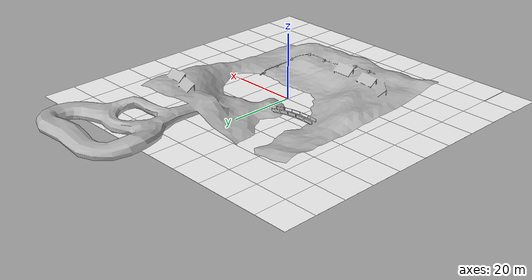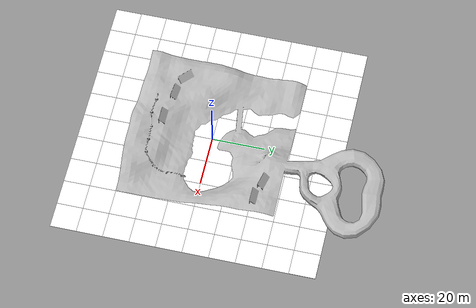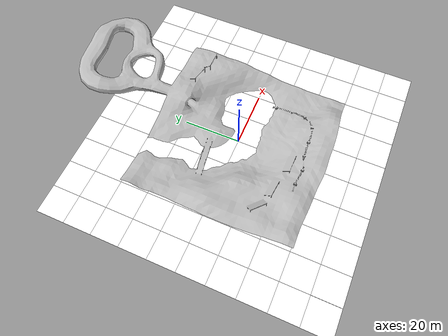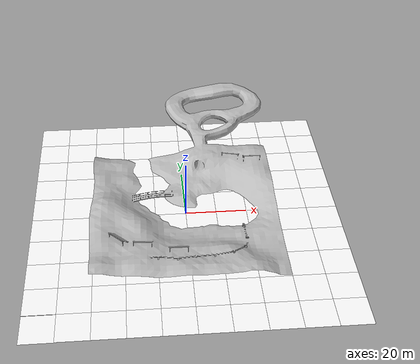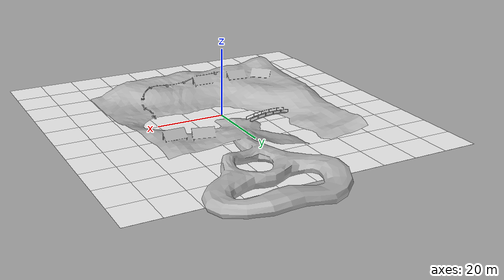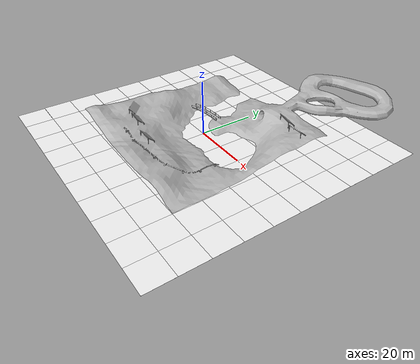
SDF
<?xml version='1.0' encoding='utf-8'?>
<sdf version="1.9">
  <world name="inspection">
    <physics type="ode">
      <max_step_size>0.004</max_step_size>
      <real_time_factor>1.0</real_time_factor>
      <real_time_update_rate>250</real_time_update_rate>
    </physics>
    <gravity>0 0 -9.8</gravity>
    <magnetic_field>6e-06 2.3e-05 -4.2e-05</magnetic_field>
    <atmosphere type="adiabatic" />
    <scene>
      <grid>false</grid>
      <ambient>0.4 0.4 0.4 1</ambient>
      <background>0.7 0.7 0.7 1</background>
      <shadows>true</shadows>
    </scene>
    <include>
      <uri>model://grass_ground</uri>
      <pose>0 0 0 0 0 0</pose>
    </include>
    <light name="sunUTC" type="directional">
      <pose>0 0 500 0 -0 0</pose>
      <cast_shadows>true</cast_shadows>
      <intensity>1</intensity>
      <direction>0.001 0.625 -0.78</direction>
      <diffuse>0.904 0.904 0.904 1</diffuse>
      <specular>0.271 0.271 0.271 1</specular>
      <attenuation>
        <range>2000</range>
        <linear>0</linear>
        <constant>1</constant>
        <quadratic>0</quadratic>
      </attenuation>
      <spot>
        <inner_angle>0</inner_angle>
        <outer_angle>0</outer_angle>
        <falloff>0</falloff>
      </spot>
    </light>
    <spherical_coordinates>
      <surface_model>EARTH_WGS84</surface_model>
      <world_frame_orientation>ENU</world_frame_orientation>
      <latitude_deg>47.397971057728974</latitude_deg>
      <longitude_deg> 8.546163739800146</longitude_deg>
      <elevation>0</elevation>
    </spherical_coordinates>

    <model name="inspection_water_geom">
      <link name="inspection_water_link">
        <pose frame="">0 0 0 0 -0 0</pose>
        <inertial>
          <pose frame="">0 0 0 0 -0 0</pose>
          <mass>1</mass>
          <inertia>
            <ixx>1</ixx>
            <ixy>0</ixy>
            <ixz>0</ixz>
            <iyy>1</iyy>
            <iyz>0</iyz>
            <izz>1</izz>
          </inertia>
        </inertial>
        <visual name="inspection_water_link_visual">
          <pose frame="">0 0 0 0 -0 0</pose>
          <geometry>
            <mesh>
              <scale>1 1 1</scale>
              <uri>model://cpr_inspection/meshes/inspection_water.dae</uri>
            </mesh>
          </geometry>
        </visual>
        <self_collide>0</self_collide>
        <enable_wind>0</enable_wind>
        <kinematic>0</kinematic>
      </link>
      <static>1</static>
      <pose frame="">0 0 0 0 -0 0</pose>
    </model>
    <model name="inspection_geom">
      <link name="inspection_world_link">
        <pose frame="">0 0 0 0 -0 0</pose>
        <inertial>
          <pose frame="">0 0 0 0 -0 0</pose>
          <mass>1</mass>
          <inertia>
            <ixx>1</ixx>
            <ixy>0</ixy>
            <ixz>0</ixz>
            <iyy>1</iyy>
            <iyz>0</iyz>
            <izz>1</izz>
          </inertia>
        </inertial>
        <collision name="inspection_world_link_collision">
          <pose frame="">0 0 0 0 -0 0</pose>
          <geometry>
            <mesh>
              <scale>1 1 1</scale>
              <uri>model://cpr_inspection/meshes/inspection_world.dae</uri>
            </mesh>
          </geometry>
          <max_contacts>10</max_contacts>
          <surface>
            <contact>
              <ode />
            </contact>
            <bounce />
            <friction>
              <torsional>
                <ode />
              </torsional>
              <ode />
            </friction>
          </surface>
        </collision>
        <visual name="inspection_world_link_visual">
          <pose frame="">0 0 0 0 -0 0</pose>
          <geometry>
            <mesh>
              <scale>1 1 1</scale>
              <uri>model://cpr_inspection/meshes/inspection_world.dae</uri>
            </mesh>
          </geometry>
        </visual>
        <self_collide>0</self_collide>
        <enable_wind>0</enable_wind>
        <kinematic>0</kinematic>
      </link>
      <static>1</static>
      <pose frame="">0 0 0 0 -0 0</pose>
    </model>
  </world>
</sdf>

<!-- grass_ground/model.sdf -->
<sdf version="1.9">
  <model name="grass_ground">
    <static>true</static>
    <link name="link">
      <collision name="collision">
        <geometry>
          <plane>
            <normal>0 0 1</normal>
            <size>100 100</size>
          </plane>
        </geometry>
      </collision>
      <!-- Grid of 10x10m tiles -->
      <visual name="tile_0_0"><pose>-45 -45 0 0 0 0</pose><cast_shadows>false</cast_shadows><geometry><plane><normal>0 0 1</normal><size>10 10</size></plane></geometry><material><diffuse>1 1 1 1</diffuse><ambient>1 1 1 1</ambient><pbr><metal><albedo_map>materials/textures/grass_dry.png</albedo_map></metal></pbr></material></visual>
      <visual name="tile_1_0"><pose>-35 -45 0 0 0 0</pose><cast_shadows>false</cast_shadows><geometry><plane><normal>0 0 1</normal><size>10 10</size></plane></geometry><material><diffuse>1 1 1 1</diffuse><ambient>1 1 1 1</ambient><pbr><metal><albedo_map>materials/textures/grass_dry.png</albedo_map></metal></pbr></material></visual>
      <visual name="tile_2_0"><pose>-25 -45 0 0 0 0</pose><cast_shadows>false</cast_shadows><geometry><plane><normal>0 0 1</normal><size>10 10</size></plane></geometry><material><diffuse>1 1 1 1</diffuse><ambient>1 1 1 1</ambient><pbr><metal><albedo_map>materials/textures/grass_dry.png</albedo_map></metal></pbr></material></visual>
      <visual name="tile_3_0"><pose>-15 -45 0 0 0 0</pose><cast_shadows>false</cast_shadows><geometry><plane><normal>0 0 1</normal><size>10 10</size></plane></geometry><material><diffuse>1 1 1 1</diffuse><ambient>1 1 1 1</ambient><pbr><metal><albedo_map>materials/textures/grass_dry.png</albedo_map></metal></pbr></material></visual>
      <visual name="tile_4_0"><pose>-5 -45 0 0 0 0</pose><cast_shadows>false</cast_shadows><geometry><plane><normal>0 0 1</normal><size>10 10</size></plane></geometry><material><diffuse>1 1 1 1</diffuse><ambient>1 1 1 1</ambient><pbr><metal><albedo_map>materials/textures/grass_dry.png</albedo_map></metal></pbr></material></visual>
      <visual name="tile_5_0"><pose>5 -45 0 0 0 0</pose><cast_shadows>false</cast_shadows><geometry><plane><normal>0 0 1</normal><size>10 10</size></plane></geometry><material><diffuse>1 1 1 1</diffuse><ambient>1 1 1 1</ambient><pbr><metal><albedo_map>materials/textures/grass_dry.png</albedo_map></metal></pbr></material></visual>
      <visual name="tile_6_0"><pose>15 -45 0 0 0 0</pose><cast_shadows>false</cast_shadows><geometry><plane><normal>0 0 1</normal><size>10 10</size></plane></geometry><material><diffuse>1 1 1 1</diffuse><ambient>1 1 1 1</ambient><pbr><metal><albedo_map>materials/textures/grass_dry.png</albedo_map></metal></pbr></material></visual>
      <visual name="tile_7_0"><pose>25 -45 0 0 0 0</pose><cast_shadows>false</cast_shadows><geometry><plane><normal>0 0 1</normal><size>10 10</size></plane></geometry><material><diffuse>1 1 1 1</diffuse><ambient>1 1 1 1</ambient><pbr><metal><albedo_map>materials/textures/grass_dry.png</albedo_map></metal></pbr></material></visual>
      <visual name="tile_8_0"><pose>35 -45 0 0 0 0</pose><cast_shadows>false</cast_shadows><geometry><plane><normal>0 0 1</normal><size>10 10</size></plane></geometry><material><diffuse>1 1 1 1</diffuse><ambient>1 1 1 1</ambient><pbr><metal><albedo_map>materials/textures/grass_dry.png</albedo_map></metal></pbr></material></visual>
      <visual name="tile_9_0"><pose>45 -45 0 0 0 0</pose><cast_shadows>false</cast_shadows><geometry><plane><normal>0 0 1</normal><size>10 10</size></plane></geometry><material><diffuse>1 1 1 1</diffuse><ambient>1 1 1 1</ambient><pbr><metal><albedo_map>materials/textures/grass_dry.png</albedo_map></metal></pbr></material></visual>
      <visual name="tile_0_1"><pose>-45 -35 0 0 0 0</pose><cast_shadows>false</cast_shadows><geometry><plane><normal>0 0 1</normal><size>10 10</size></plane></geometry><material><diffuse>1 1 1 1</diffuse><ambient>1 1 1 1</ambient><pbr><metal><albedo_map>materials/textures/grass_dry.png</albedo_map></metal></pbr></material></visual>
      <visual name="tile_1_1"><pose>-35 -35 0 0 0 0</pose><cast_shadows>false</cast_shadows><geometry><plane><normal>0 0 1</normal><size>10 10</size></plane></geometry><material><diffuse>1 1 1 1</diffuse><ambient>1 1 1 1</ambient><pbr><metal><albedo_map>materials/textures/grass_dry.png</albedo_map></metal></pbr></material></visual>
      <visual name="tile_2_1"><pose>-25 -35 0 0 0 0</pose><cast_shadows>false</cast_shadows><geometry><plane><normal>0 0 1</normal><size>10 10</size></plane></geometry><material><diffuse>1 1 1 1</diffuse><ambient>1 1 1 1</ambient><pbr><metal><albedo_map>materials/textures/grass_dry.png</albedo_map></metal></pbr></material></visual>
      <visual name="tile_3_1"><pose>-15 -35 0 0 0 0</pose><cast_shadows>false</cast_shadows><geometry><plane><normal>0 0 1</normal><size>10 10</size></plane></geometry><material><diffuse>1 1 1 1</diffuse><ambient>1 1 1 1</ambient><pbr><metal><albedo_map>materials/textures/grass_dry.png</albedo_map></metal></pbr></material></visual>
      <visual name="tile_4_1"><pose>-5 -35 0 0 0 0</pose><cast_shadows>false</cast_shadows><geometry><plane><normal>0 0 1</normal><size>10 10</size></plane></geometry><material><diffuse>1 1 1 1</diffuse><ambient>1 1 1 1</ambient><pbr><metal><albedo_map>materials/textures/grass_dry.png</albedo_map></metal></pbr></material></visual>
      <visual name="tile_5_1"><pose>5 -35 0 0 0 0</pose><cast_shadows>false</cast_shadows><geometry><plane><normal>0 0 1</normal><size>10 10</size></plane></geometry><material><diffuse>1 1 1 1</diffuse><ambient>1 1 1 1</ambient><pbr><metal><albedo_map>materials/textures/grass_dry.png</albedo_map></metal></pbr></material></visual>
      <visual name="tile_6_1"><pose>15 -35 0 0 0 0</pose><cast_shadows>false</cast_shadows><geometry><plane><normal>0 0 1</normal><size>10 10</size></plane></geometry><material><diffuse>1 1 1 1</diffuse><ambient>1 1 1 1</ambient><pbr><metal><albedo_map>materials/textures/grass_dry.png</albedo_map></metal></pbr></material></visual>
      <visual name="tile_7_1"><pose>25 -35 0 0 0 0</pose><cast_shadows>false</cast_shadows><geometry><plane><normal>0 0 1</normal><size>10 10</size></plane></geometry><material><diffuse>1 1 1 1</diffuse><ambient>1 1 1 1</ambient><pbr><metal><albedo_map>materials/textures/grass_dry.png</albedo_map></metal></pbr></material></visual>
      <visual name="tile_8_1"><pose>35 -35 0 0 0 0</pose><cast_shadows>false</cast_shadows><geometry><plane><normal>0 0 1</normal><size>10 10</size></plane></geometry><material><diffuse>1 1 1 1</diffuse><ambient>1 1 1 1</ambient><pbr><metal><albedo_map>materials/textures/grass_dry.png</albedo_map></metal></pbr></material></visual>
      <visual name="tile_9_1"><pose>45 -35 0 0 0 0</pose><cast_shadows>false</cast_shadows><geometry><plane><normal>0 0 1</normal><size>10 10</size></plane></geometry><material><diffuse>1 1 1 1</diffuse><ambient>1 1 1 1</ambient><pbr><metal><albedo_map>materials/textures/grass_dry.png</albedo_map></metal></pbr></material></visual>
      <visual name="tile_0_2"><pose>-45 -25 0 0 0 0</pose><cast_shadows>false</cast_shadows><geometry><plane><normal>0 0 1</normal><size>10 10</size></plane></geometry><material><diffuse>1 1 1 1</diffuse><ambient>1 1 1 1</ambient><pbr><metal><albedo_map>materials/textures/grass_dry.png</albedo_map></metal></pbr></material></visual>
      <visual name="tile_1_2"><pose>-35 -25 0 0 0 0</pose><cast_shadows>false</cast_shadows><geometry><plane><normal>0 0 1</normal><size>10 10</size></plane></geometry><material><diffuse>1 1 1 1</diffuse><ambient>1 1 1 1</ambient><pbr><metal><albedo_map>materials/textures/grass_dry.png</albedo_map></metal></pbr></material></visual>
      <visual name="tile_2_2"><pose>-25 -25 0 0 0 0</pose><cast_shadows>false</cast_shadows><geometry><plane><normal>0 0 1</normal><size>10 10</size></plane></geometry><material><diffuse>1 1 1 1</diffuse><ambient>1 1 1 1</ambient><pbr><metal><albedo_map>materials/textures/grass_dry.png</albedo_map></metal></pbr></material></visual>
      <visual name="tile_3_2"><pose>-15 -25 0 0 0 0</pose><cast_shadows>false</cast_shadows><geometry><plane><normal>0 0 1</normal><size>10 10</size></plane></geometry><material><diffuse>1 1 1 1</diffuse><ambient>1 1 1 1</ambient><pbr><metal><albedo_map>materials/textures/grass_dry.png</albedo_map></metal></pbr></material></visual>
      <visual name="tile_4_2"><pose>-5 -25 0 0 0 0</pose><cast_shadows>false</cast_shadows><geometry><plane><normal>0 0 1</normal><size>10 10</size></plane></geometry><material><diffuse>1 1 1 1</diffuse><ambient>1 1 1 1</ambient><pbr><metal><albedo_map>materials/textures/grass_dry.png</albedo_map></metal></pbr></material></visual>
      <visual name="tile_5_2"><pose>5 -25 0 0 0 0</pose><cast_shadows>false</cast_shadows><geometry><plane><normal>0 0 1</normal><size>10 10</size></plane></geometry><material><diffuse>1 1 1 1</diffuse><ambient>1 1 1 1</ambient><pbr><metal><albedo_map>materials/textures/grass_dry.png</albedo_map></metal></pbr></material></visual>
      <visual name="tile_6_2"><pose>15 -25 0 0 0 0</pose><cast_shadows>false</cast_shadows><geometry><plane><normal>0 0 1</normal><size>10 10</size></plane></geometry><material><diffuse>1 1 1 1</diffuse><ambient>1 1 1 1</ambient><pbr><metal><albedo_map>materials/textures/grass_dry.png</albedo_map></metal></pbr></material></visual>
      <visual name="tile_7_2"><pose>25 -25 0 0 0 0</pose><cast_shadows>false</cast_shadows><geometry><plane><normal>0 0 1</normal><size>10 10</size></plane></geometry><material><diffuse>1 1 1 1</diffuse><ambient>1 1 1 1</ambient><pbr><metal><albedo_map>materials/textures/grass_dry.png</albedo_map></metal></pbr></material></visual>
      <visual name="tile_8_2"><pose>35 -25 0 0 0 0</pose><cast_shadows>false</cast_shadows><geometry><plane><normal>0 0 1</normal><size>10 10</size></plane></geometry><material><diffuse>1 1 1 1</diffuse><ambient>1 1 1 1</ambient><pbr><metal><albedo_map>materials/textures/grass_dry.png</albedo_map></metal></pbr></material></visual>
      <visual name="tile_9_2"><pose>45 -25 0 0 0 0</pose><cast_shadows>false</cast_shadows><geometry><plane><normal>0 0 1</normal><size>10 10</size></plane></geometry><material><diffuse>1 1 1 1</diffuse><ambient>1 1 1 1</ambient><pbr><metal><albedo_map>materials/textures/grass_dry.png</albedo_map></metal></pbr></material></visual>
      <visual name="tile_0_3"><pose>-45 -15 0 0 0 0</pose><cast_shadows>false</cast_shadows><geometry><plane><normal>0 0 1</normal><size>10 10</size></plane></geometry><material><diffuse>1 1 1 1</diffuse><ambient>1 1 1 1</ambient><pbr><metal><albedo_map>materials/textures/grass_dry.png</albedo_map></metal></pbr></material></visual>
      <visual name="tile_1_3"><pose>-35 -15 0 0 0 0</pose><cast_shadows>false</cast_shadows><geometry><plane><normal>0 0 1</normal><size>10 10</size></plane></geometry><material><diffuse>1 1 1 1</diffuse><ambient>1 1 1 1</ambient><pbr><metal><albedo_map>materials/textures/grass_dry.png</albedo_map></metal></pbr></material></visual>
      <visual name="tile_2_3"><pose>-25 -15 0 0 0 0</pose><cast_shadows>false</cast_shadows><geometry><plane><normal>0 0 1</normal><size>10 10</size></plane></geometry><material><diffuse>1 1 1 1</diffuse><ambient>1 1 1 1</ambient><pbr><metal><albedo_map>materials/textures/grass_dry.png</albedo_map></metal></pbr></material></visual>
      <visual name="tile_3_3"><pose>-15 -15 0 0 0 0</pose><cast_shadows>false</cast_shadows><geometry><plane><normal>0 0 1</normal><size>10 10</size></plane></geometry><material><diffuse>1 1 1 1</diffuse><ambient>1 1 1 1</ambient><pbr><metal><albedo_map>materials/textures/grass_dry.png</albedo_map></metal></pbr></material></visual>
      <visual name="tile_4_3"><pose>-5 -15 0 0 0 0</pose><cast_shadows>false</cast_shadows><geometry><plane><normal>0 0 1</normal><size>10 10</size></plane></geometry><material><diffuse>1 1 1 1</diffuse><ambient>1 1 1 1</ambient><pbr><metal><albedo_map>materials/textures/grass_dry.png</albedo_map></metal></pbr></material></visual>
      <visual name="tile_5_3"><pose>5 -15 0 0 0 0</pose><cast_shadows>false</cast_shadows><geometry><plane><normal>0 0 1</normal><size>10 10</size></plane></geometry><material><diffuse>1 1 1 1</diffuse><ambient>1 1 1 1</ambient><pbr><metal><albedo_map>materials/textures/grass_dry.png</albedo_map></metal></pbr></material></visual>
      <visual name="tile_6_3"><pose>15 -15 0 0 0 0</pose><cast_shadows>false</cast_shadows><geometry><plane><normal>0 0 1</normal><size>10 10</size></plane></geometry><material><diffuse>1 1 1 1</diffuse><ambient>1 1 1 1</ambient><pbr><metal><albedo_map>materials/textures/grass_dry.png</albedo_map></metal></pbr></material></visual>
      <visual name="tile_7_3"><pose>25 -15 0 0 0 0</pose><cast_shadows>false</cast_shadows><geometry><plane><normal>0 0 1</normal><size>10 10</size></plane></geometry><material><diffuse>1 1 1 1</diffuse><ambient>1 1 1 1</ambient><pbr><metal><albedo_map>materials/textures/grass_dry.png</albedo_map></metal></pbr></material></visual>
      <visual name="tile_8_3"><pose>35 -15 0 0 0 0</pose><cast_shadows>false</cast_shadows><geometry><plane><normal>0 0 1</normal><size>10 10</size></plane></geometry><material><diffuse>1 1 1 1</diffuse><ambient>1 1 1 1</ambient><pbr><metal><albedo_map>materials/textures/grass_dry.png</albedo_map></metal></pbr></material></visual>
      <visual name="tile_9_3"><pose>45 -15 0 0 0 0</pose><cast_shadows>false</cast_shadows><geometry><plane><normal>0 0 1</normal><size>10 10</size></plane></geometry><material><diffuse>1 1 1 1</diffuse><ambient>1 1 1 1</ambient><pbr><metal><albedo_map>materials/textures/grass_dry.png</albedo_map></metal></pbr></material></visual>
      <visual name="tile_0_4"><pose>-45 -5 0 0 0 0</pose><cast_shadows>false</cast_shadows><geometry><plane><normal>0 0 1</normal><size>10 10</size></plane></geometry><material><diffuse>1 1 1 1</diffuse><ambient>1 1 1 1</ambient><pbr><metal><albedo_map>materials/textures/grass_dry.png</albedo_map></metal></pbr></material></visual>
      <visual name="tile_1_4"><pose>-35 -5 0 0 0 0</pose><cast_shadows>false</cast_shadows><geometry><plane><normal>0 0 1</normal><size>10 10</size></plane></geometry><material><diffuse>1 1 1 1</diffuse><ambient>1 1 1 1</ambient><pbr><metal><albedo_map>materials/textures/grass_dry.png</albedo_map></metal></pbr></material></visual>
      <visual name="tile_2_4"><pose>-25 -5 0 0 0 0</pose><cast_shadows>false</cast_shadows><geometry><plane><normal>0 0 1</normal><size>10 10</size></plane></geometry><material><diffuse>1 1 1 1</diffuse><ambient>1 1 1 1</ambient><pbr><metal><albedo_map>materials/textures/grass_dry.png</albedo_map></metal></pbr></material></visual>
      <visual name="tile_3_4"><pose>-15 -5 0 0 0 0</pose><cast_shadows>false</cast_shadows><geometry><plane><normal>0 0 1</normal><size>10 10</size></plane></geometry><material><diffuse>1 1 1 1</diffuse><ambient>1 1 1 1</ambient><pbr><metal><albedo_map>materials/textures/grass_dry.png</albedo_map></metal></pbr></material></visual>
      <visual name="tile_4_4"><pose>-5 -5 0 0 0 0</pose><cast_shadows>false</cast_shadows><geometry><plane><normal>0 0 1</normal><size>10 10</size></plane></geometry><material><diffuse>1 1 1 1</diffuse><ambient>1 1 1 1</ambient><pbr><metal><albedo_map>materials/textures/grass_dry.png</albedo_map></metal></pbr></material></visual>
      <visual name="tile_5_4"><pose>5 -5 0 0 0 0</pose><cast_shadows>false</cast_shadows><geometry><plane><normal>0 0 1</normal><size>10 10</size></plane></geometry><material><diffuse>1 1 1 1</diffuse><ambient>1 1 1 1</ambient><pbr><metal><albedo_map>materials/textures/grass_dry.png</albedo_map></metal></pbr></material></visual>
      <visual name="tile_6_4"><pose>15 -5 0 0 0 0</pose><cast_shadows>false</cast_shadows><geometry><plane><normal>0 0 1</normal><size>10 10</size></plane></geometry><material><diffuse>1 1 1 1</diffuse><ambient>1 1 1 1</ambient><pbr><metal><albedo_map>materials/textures/grass_dry.png</albedo_map></metal></pbr></material></visual>
      <visual name="tile_7_4"><pose>25 -5 0 0 0 0</pose><cast_shadows>false</cast_shadows><geometry><plane><normal>0 0 1</normal><size>10 10</size></plane></geometry><material><diffuse>1 1 1 1</diffuse><ambient>1 1 1 1</ambient><pbr><metal><albedo_map>materials/textures/grass_dry.png</albedo_map></metal></pbr></material></visual>
      <visual name="tile_8_4"><pose>35 -5 0 0 0 0</pose><cast_shadows>false</cast_shadows><geometry><plane><normal>0 0 1</normal><size>10 10</size></plane></geometry><material><diffuse>1 1 1 1</diffuse><ambient>1 1 1 1</ambient><pbr><metal><albedo_map>materials/textures/grass_dry.png</albedo_map></metal></pbr></material></visual>
      <visual name="tile_9_4"><pose>45 -5 0 0 0 0</pose><cast_shadows>false</cast_shadows><geometry><plane><normal>0 0 1</normal><size>10 10</size></plane></geometry><material><diffuse>1 1 1 1</diffuse><ambient>1 1 1 1</ambient><pbr><metal><albedo_map>materials/textures/grass_dry.png</albedo_map></metal></pbr></material></visual>
      <visual name="tile_0_5"><pose>-45 5 0 0 0 0</pose><cast_shadows>false</cast_shadows><geometry><plane><normal>0 0 1</normal><size>10 10</size></plane></geometry><material><diffuse>1 1 1 1</diffuse><ambient>1 1 1 1</ambient><pbr><metal><albedo_map>materials/textures/grass_dry.png</albedo_map></metal></pbr></material></visual>
      <visual name="tile_1_5"><pose>-35 5 0 0 0 0</pose><cast_shadows>false</cast_shadows><geometry><plane><normal>0 0 1</normal><size>10 10</size></plane></geometry><material><diffuse>1 1 1 1</diffuse><ambient>1 1 1 1</ambient><pbr><metal><albedo_map>materials/textures/grass_dry.png</albedo_map></metal></pbr></material></visual>
      <visual name="tile_2_5"><pose>-25 5 0 0 0 0</pose><cast_shadows>false</cast_shadows><geometry><plane><normal>0 0 1</normal><size>10 10</size></plane></geometry><material><diffuse>1 1 1 1</diffuse><ambient>1 1 1 1</ambient><pbr><metal><albedo_map>materials/textures/grass_dry.png</albedo_map></metal></pbr></material></visual>
      <visual name="tile_3_5"><pose>-15 5 0 0 0 0</pose><cast_shadows>false</cast_shadows><geometry><plane><normal>0 0 1</normal><size>10 10</size></plane></geometry><material><diffuse>1 1 1 1</diffuse><ambient>1 1 1 1</ambient><pbr><metal><albedo_map>materials/textures/grass_dry.png</albedo_map></metal></pbr></material></visual>
      <visual name="tile_4_5"><pose>-5 5 0 0 0 0</pose><cast_shadows>false</cast_shadows><geometry><plane><normal>0 0 1</normal><size>10 10</size></plane></geometry><material><diffuse>1 1 1 1</diffuse><ambient>1 1 1 1</ambient><pbr><metal><albedo_map>materials/textures/grass_dry.png</albedo_map></metal></pbr></material></visual>
      <visual name="tile_5_5"><pose>5 5 0 0 0 0</pose><cast_shadows>false</cast_shadows><geometry><plane><normal>0 0 1</normal><size>10 10</size></plane></geometry><material><diffuse>1 1 1 1</diffuse><ambient>1 1 1 1</ambient><pbr><metal><albedo_map>materials/textures/grass_dry.png</albedo_map></metal></pbr></material></visual>
      <visual name="tile_6_5"><pose>15 5 0 0 0 0</pose><cast_shadows>false</cast_shadows><geometry><plane><normal>0 0 1</normal><size>10 10</size></plane></geometry><material><diffuse>1 1 1 1</diffuse><ambient>1 1 1 1</ambient><pbr><metal><albedo_map>materials/textures/grass_dry.png</albedo_map></metal></pbr></material></visual>
      <visual name="tile_7_5"><pose>25 5 0 0 0 0</pose><cast_shadows>false</cast_shadows><geometry><plane><normal>0 0 1</normal><size>10 10</size></plane></geometry><material><diffuse>1 1 1 1</diffuse><ambient>1 1 1 1</ambient><pbr><metal><albedo_map>materials/textures/grass_dry.png</albedo_map></metal></pbr></material></visual>
      <visual name="tile_8_5"><pose>35 5 0 0 0 0</pose><cast_shadows>false</cast_shadows><geometry><plane><normal>0 0 1</normal><size>10 10</size></plane></geometry><material><diffuse>1 1 1 1</diffuse><ambient>1 1 1 1</ambient><pbr><metal><albedo_map>materials/textures/grass_dry.png</albedo_map></metal></pbr></material></visual>
      <visual name="tile_9_5"><pose>45 5 0 0 0 0</pose><cast_shadows>false</cast_shadows><geometry><plane><normal>0 0 1</normal><size>10 10</size></plane></geometry><material><diffuse>1 1 1 1</diffuse><ambient>1 1 1 1</ambient><pbr><metal><albedo_map>materials/textures/grass_dry.png</albedo_map></metal></pbr></material></visual>
      <visual name="tile_0_6"><pose>-45 15 0 0 0 0</pose><cast_shadows>false</cast_shadows><geometry><plane><normal>0 0 1</normal><size>10 10</size></plane></geometry><material><diffuse>1 1 1 1</diffuse><ambient>1 1 1 1</ambient><pbr><metal><albedo_map>materials/textures/grass_dry.png</albedo_map></metal></pbr></material></visual>
      <visual name="tile_1_6"><pose>-35 15 0 0 0 0</pose><cast_shadows>false</cast_shadows><geometry><plane><normal>0 0 1</normal><size>10 10</size></plane></geometry><material><diffuse>1 1 1 1</diffuse><ambient>1 1 1 1</ambient><pbr><metal><albedo_map>materials/textures/grass_dry.png</albedo_map></metal></pbr></material></visual>
      <visual name="tile_2_6"><pose>-25 15 0 0 0 0</pose><cast_shadows>false</cast_shadows><geometry><plane><normal>0 0 1</normal><size>10 10</size></plane></geometry><material><diffuse>1 1 1 1</diffuse><ambient>1 1 1 1</ambient><pbr><metal><albedo_map>materials/textures/grass_dry.png</albedo_map></metal></pbr></material></visual>
      <visual name="tile_3_6"><pose>-15 15 0 0 0 0</pose><cast_shadows>false</cast_shadows><geometry><plane><normal>0 0 1</normal><size>10 10</size></plane></geometry><material><diffuse>1 1 1 1</diffuse><ambient>1 1 1 1</ambient><pbr><metal><albedo_map>materials/textures/grass_dry.png</albedo_map></metal></pbr></material></visual>
      <visual name="tile_4_6"><pose>-5 15 0 0 0 0</pose><cast_shadows>false</cast_shadows><geometry><plane><normal>0 0 1</normal><size>10 10</size></plane></geometry><material><diffuse>1 1 1 1</diffuse><ambient>1 1 1 1</ambient><pbr><metal><albedo_map>materials/textures/grass_dry.png</albedo_map></metal></pbr></material></visual>
      <visual name="tile_5_6"><pose>5 15 0 0 0 0</pose><cast_shadows>false</cast_shadows><geometry><plane><normal>0 0 1</normal><size>10 10</size></plane></geometry><material><diffuse>1 1 1 1</diffuse><ambient>1 1 1 1</ambient><pbr><metal><albedo_map>materials/textures/grass_dry.png</albedo_map></metal></pbr></material></visual>
      <visual name="tile_6_6"><pose>15 15 0 0 0 0</pose><cast_shadows>false</cast_shadows><geometry><plane><normal>0 0 1</normal><size>10 10</size></plane></geometry><material><diffuse>1 1 1 1</diffuse><ambient>1 1 1 1</ambient><pbr><metal><albedo_map>materials/textures/grass_dry.png</albedo_map></metal></pbr></material></visual>
      <visual name="tile_7_6"><pose>25 15 0 0 0 0</pose><cast_shadows>false</cast_shadows><geometry><plane><normal>0 0 1</normal><size>10 10</size></plane></geometry><material><diffuse>1 1 1 1</diffuse><ambient>1 1 1 1</ambient><pbr><metal><albedo_map>materials/textures/grass_dry.png</albedo_map></metal></pbr></material></visual>
      <visual name="tile_8_6"><pose>35 15 0 0 0 0</pose><cast_shadows>false</cast_shadows><geometry><plane><normal>0 0 1</normal><size>10 10</size></plane></geometry><material><diffuse>1 1 1 1</diffuse><ambient>1 1 1 1</ambient><pbr><metal><albedo_map>materials/textures/grass_dry.png</albedo_map></metal></pbr></material></visual>
      <visual name="tile_9_6"><pose>45 15 0 0 0 0</pose><cast_shadows>false</cast_shadows><geometry><plane><normal>0 0 1</normal><size>10 10</size></plane></geometry><material><diffuse>1 1 1 1</diffuse><ambient>1 1 1 1</ambient><pbr><metal><albedo_map>materials/textures/grass_dry.png</albedo_map></metal></pbr></material></visual>
      <visual name="tile_0_7"><pose>-45 25 0 0 0 0</pose><cast_shadows>false</cast_shadows><geometry><plane><normal>0 0 1</normal><size>10 10</size></plane></geometry><material><diffuse>1 1 1 1</diffuse><ambient>1 1 1 1</ambient><pbr><metal><albedo_map>materials/textures/grass_dry.png</albedo_map></metal></pbr></material></visual>
      <visual name="tile_1_7"><pose>-35 25 0 0 0 0</pose><cast_shadows>false</cast_shadows><geometry><plane><normal>0 0 1</normal><size>10 10</size></plane></geometry><material><diffuse>1 1 1 1</diffuse><ambient>1 1 1 1</ambient><pbr><metal><albedo_map>materials/textures/grass_dry.png</albedo_map></metal></pbr></material></visual>
      <visual name="tile_2_7"><pose>-25 25 0 0 0 0</pose><cast_shadows>false</cast_shadows><geometry><plane><normal>0 0 1</normal><size>10 10</size></plane></geometry><material><diffuse>1 1 1 1</diffuse><ambient>1 1 1 1</ambient><pbr><metal><albedo_map>materials/textures/grass_dry.png</albedo_map></metal></pbr></material></visual>
      <visual name="tile_3_7"><pose>-15 25 0 0 0 0</pose><cast_shadows>false</cast_shadows><geometry><plane><normal>0 0 1</normal><size>10 10</size></plane></geometry><material><diffuse>1 1 1 1</diffuse><ambient>1 1 1 1</ambient><pbr><metal><albedo_map>materials/textures/grass_dry.png</albedo_map></metal></pbr></material></visual>
      <visual name="tile_4_7"><pose>-5 25 0 0 0 0</pose><cast_shadows>false</cast_shadows><geometry><plane><normal>0 0 1</normal><size>10 10</size></plane></geometry><material><diffuse>1 1 1 1</diffuse><ambient>1 1 1 1</ambient><pbr><metal><albedo_map>materials/textures/grass_dry.png</albedo_map></metal></pbr></material></visual>
      <visual name="tile_5_7"><pose>5 25 0 0 0 0</pose><cast_shadows>false</cast_shadows><geometry><plane><normal>0 0 1</normal><size>10 10</size></plane></geometry><material><diffuse>1 1 1 1</diffuse><ambient>1 1 1 1</ambient><pbr><metal><albedo_map>materials/textures/grass_dry.png</albedo_map></metal></pbr></material></visual>
      <visual name="tile_6_7"><pose>15 25 0 0 0 0</pose><cast_shadows>false</cast_shadows><geometry><plane><normal>0 0 1</normal><size>10 10</size></plane></geometry><material><diffuse>1 1 1 1</diffuse><ambient>1 1 1 1</ambient><pbr><metal><albedo_map>materials/textures/grass_dry.png</albedo_map></metal></pbr></material></visual>
      <visual name="tile_7_7"><pose>25 25 0 0 0 0</pose><cast_shadows>false</cast_shadows><geometry><plane><normal>0 0 1</normal><size>10 10</size></plane></geometry><material><diffuse>1 1 1 1</diffuse><ambient>1 1 1 1</ambient><pbr><metal><albedo_map>materials/textures/grass_dry.png</albedo_map></metal></pbr></material></visual>
      <visual name="tile_8_7"><pose>35 25 0 0 0 0</pose><cast_shadows>false</cast_shadows><geometry><plane><normal>0 0 1</normal><size>10 10</size></plane></geometry><material><diffuse>1 1 1 1</diffuse><ambient>1 1 1 1</ambient><pbr><metal><albedo_map>materials/textures/grass_dry.png</albedo_map></metal></pbr></material></visual>
      <visual name="tile_9_7"><pose>45 25 0 0 0 0</pose><cast_shadows>false</cast_shadows><geometry><plane><normal>0 0 1</normal><size>10 10</size></plane></geometry><material><diffuse>1 1 1 1</diffuse><ambient>1 1 1 1</ambient><pbr><metal><albedo_map>materials/textures/grass_dry.png</albedo_map></metal></pbr></material></visual>
      <visual name="tile_0_8"><pose>-45 35 0 0 0 0</pose><cast_shadows>false</cast_shadows><geometry><plane><normal>0 0 1</normal><size>10 10</size></plane></geometry><material><diffuse>1 1 1 1</diffuse><ambient>1 1 1 1</ambient><pbr><metal><albedo_map>materials/textures/grass_dry.png</albedo_map></metal></pbr></material></visual>
      <visual name="tile_1_8"><pose>-35 35 0 0 0 0</pose><cast_shadows>false</cast_shadows><geometry><plane><normal>0 0 1</normal><size>10 10</size></plane></geometry><material><diffuse>1 1 1 1</diffuse><ambient>1 1 1 1</ambient><pbr><metal><albedo_map>materials/textures/grass_dry.png</albedo_map></metal></pbr></material></visual>
      <visual name="tile_2_8"><pose>-25 35 0 0 0 0</pose><cast_shadows>false</cast_shadows><geometry><plane><normal>0 0 1</normal><size>10 10</size></plane></geometry><material><diffuse>1 1 1 1</diffuse><ambient>1 1 1 1</ambient><pbr><metal><albedo_map>materials/textures/grass_dry.png</albedo_map></metal></pbr></material></visual>
      <visual name="tile_3_8"><pose>-15 35 0 0 0 0</pose><cast_shadows>false</cast_shadows><geometry><plane><normal>0 0 1</normal><size>10 10</size></plane></geometry><material><diffuse>1 1 1 1</diffuse><ambient>1 1 1 1</ambient><pbr><metal><albedo_map>materials/textures/grass_dry.png</albedo_map></metal></pbr></material></visual>
      <visual name="tile_4_8"><pose>-5 35 0 0 0 0</pose><cast_shadows>false</cast_shadows><geometry><plane><normal>0 0 1</normal><size>10 10</size></plane></geometry><material><diffuse>1 1 1 1</diffuse><ambient>1 1 1 1</ambient><pbr><metal><albedo_map>materials/textures/grass_dry.png</albedo_map></metal></pbr></material></visual>
      <visual name="tile_5_8"><pose>5 35 0 0 0 0</pose><cast_shadows>false</cast_shadows><geometry><plane><normal>0 0 1</normal><size>10 10</size></plane></geometry><material><diffuse>1 1 1 1</diffuse><ambient>1 1 1 1</ambient><pbr><metal><albedo_map>materials/textures/grass_dry.png</albedo_map></metal></pbr></material></visual>
      <visual name="tile_6_8"><pose>15 35 0 0 0 0</pose><cast_shadows>false</cast_shadows><geometry><plane><normal>0 0 1</normal><size>10 10</size></plane></geometry><material><diffuse>1 1 1 1</diffuse><ambient>1 1 1 1</ambient><pbr><metal><albedo_map>materials/textures/grass_dry.png</albedo_map></metal></pbr></material></visual>
      <visual name="tile_7_8"><pose>25 35 0 0 0 0</pose><cast_shadows>false</cast_shadows><geometry><plane><normal>0 0 1</normal><size>10 10</size></plane></geometry><material><diffuse>1 1 1 1</diffuse><ambient>1 1 1 1</ambient><pbr><metal><albedo_map>materials/textures/grass_dry.png</albedo_map></metal></pbr></material></visual>
      <visual name="tile_8_8"><pose>35 35 0 0 0 0</pose><cast_shadows>false</cast_shadows><geometry><plane><normal>0 0 1</normal><size>10 10</size></plane></geometry><material><diffuse>1 1 1 1</diffuse><ambient>1 1 1 1</ambient><pbr><metal><albedo_map>materials/textures/grass_dry.png</albedo_map></metal></pbr></material></visual>
      <visual name="tile_9_8"><pose>45 35 0 0 0 0</pose><cast_shadows>false</cast_shadows><geometry><plane><normal>0 0 1</normal><size>10 10</size></plane></geometry><material><diffuse>1 1 1 1</diffuse><ambient>1 1 1 1</ambient><pbr><metal><albedo_map>materials/textures/grass_dry.png</albedo_map></metal></pbr></material></visual>
      <visual name="tile_0_9"><pose>-45 45 0 0 0 0</pose><cast_shadows>false</cast_shadows><geometry><plane><normal>0 0 1</normal><size>10 10</size></plane></geometry><material><diffuse>1 1 1 1</diffuse><ambient>1 1 1 1</ambient><pbr><metal><albedo_map>materials/textures/grass_dry.png</albedo_map></metal></pbr></material></visual>
      <visual name="tile_1_9"><pose>-35 45 0 0 0 0</pose><cast_shadows>false</cast_shadows><geometry><plane><normal>0 0 1</normal><size>10 10</size></plane></geometry><material><diffuse>1 1 1 1</diffuse><ambient>1 1 1 1</ambient><pbr><metal><albedo_map>materials/textures/grass_dry.png</albedo_map></metal></pbr></material></visual>
      <visual name="tile_2_9"><pose>-25 45 0 0 0 0</pose><cast_shadows>false</cast_shadows><geometry><plane><normal>0 0 1</normal><size>10 10</size></plane></geometry><material><diffuse>1 1 1 1</diffuse><ambient>1 1 1 1</ambient><pbr><metal><albedo_map>materials/textures/grass_dry.png</albedo_map></metal></pbr></material></visual>
      <visual name="tile_3_9"><pose>-15 45 0 0 0 0</pose><cast_shadows>false</cast_shadows><geometry><plane><normal>0 0 1</normal><size>10 10</size></plane></geometry><material><diffuse>1 1 1 1</diffuse><ambient>1 1 1 1</ambient><pbr><metal><albedo_map>materials/textures/grass_dry.png</albedo_map></metal></pbr></material></visual>
      <visual name="tile_4_9"><pose>-5 45 0 0 0 0</pose><cast_shadows>false</cast_shadows><geometry><plane><normal>0 0 1</normal><size>10 10</size></plane></geometry><material><diffuse>1 1 1 1</diffuse><ambient>1 1 1 1</ambient><pbr><metal><albedo_map>materials/textures/grass_dry.png</albedo_map></metal></pbr></material></visual>
      <visual name="tile_5_9"><pose>5 45 0 0 0 0</pose><cast_shadows>false</cast_shadows><geometry><plane><normal>0 0 1</normal><size>10 10</size></plane></geometry><material><diffuse>1 1 1 1</diffuse><ambient>1 1 1 1</ambient><pbr><metal><albedo_map>materials/textures/grass_dry.png</albedo_map></metal></pbr></material></visual>
      <visual name="tile_6_9"><pose>15 45 0 0 0 0</pose><cast_shadows>false</cast_shadows><geometry><plane><normal>0 0 1</normal><size>10 10</size></plane></geometry><material><diffuse>1 1 1 1</diffuse><ambient>1 1 1 1</ambient><pbr><metal><albedo_map>materials/textures/grass_dry.png</albedo_map></metal></pbr></material></visual>
      <visual name="tile_7_9"><pose>25 45 0 0 0 0</pose><cast_shadows>false</cast_shadows><geometry><plane><normal>0 0 1</normal><size>10 10</size></plane></geometry><material><diffuse>1 1 1 1</diffuse><ambient>1 1 1 1</ambient><pbr><metal><albedo_map>materials/textures/grass_dry.png</albedo_map></metal></pbr></material></visual>
      <visual name="tile_8_9"><pose>35 45 0 0 0 0</pose><cast_shadows>false</cast_shadows><geometry><plane><normal>0 0 1</normal><size>10 10</size></plane></geometry><material><diffuse>1 1 1 1</diffuse><ambient>1 1 1 1</ambient><pbr><metal><albedo_map>materials/textures/grass_dry.png</albedo_map></metal></pbr></material></visual>
      <visual name="tile_9_9"><pose>45 45 0 0 0 0</pose><cast_shadows>false</cast_shadows><geometry><plane><normal>0 0 1</normal><size>10 10</size></plane></geometry><material><diffuse>1 1 1 1</diffuse><ambient>1 1 1 1</ambient><pbr><metal><albedo_map>materials/textures/grass_dry.png</albedo_map></metal></pbr></material></visual>
    </link>
  </model>
</sdf>
